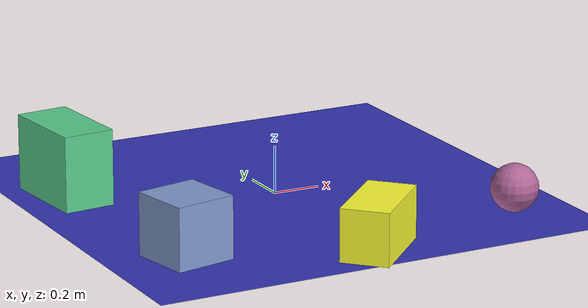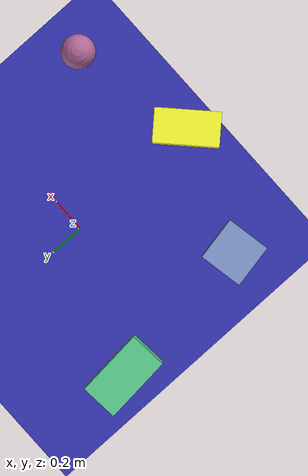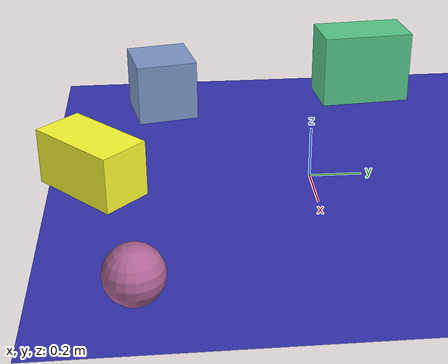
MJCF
<mujoco>
   <asset>
<texture type="skybox" builtin="gradient" rgb1="0.4 0.4 1.0" rgb2="1.0 0.3 0.5" width="500" height="500"/>
<texture name="flat_0" builtin="flat" rgb1="0.5 0.6 0.8" rgb2="0.5 0.6 0.8"  width="500" height="500"/>
<texture name="checker_1" builtin="checker" rgb1="0.9 0.6 0.9" rgb2="0.5 0.2 0.3" width="500" height="500"/>
<texture name="gradient_2" builtin="gradient" rgb1="0.1 0.8 0.8" rgb2="0.6 0.8 0.3" width="500" height="500"/>
<texture name="flat_3" builtin="flat" rgb1="1.0 1.0 0.2" rgb2="1.0 1.0 0.2"  width="500" height="500"/><material name="flat_0_mat" reflectance="0.4842770800506171" texture="flat_0" texuniform="true"/>
<material name="checker_1_mat" reflectance="0.35874438715824586" texrepeat="10 10" texture="checker_1" texuniform="false" />
<material name="gradient_2_mat" reflectance="0.3997366577722494" texture="gradient_2" texuniform="true"/>
<material name="flat_3_mat" reflectance="0.6703954456533228" texture="flat_3" texuniform="true"/>
   </asset>

   <worldbody>
     <geom type="plane" size="1 1 0.1" rgba="0.2 0.2 0.7 1" />
<light pos="-0.7636870178013433 0.3600252531273034 2" dir="0 0 -1" cutoff="90" diffuse="1 1 1" specular="1 1 1"/>
<light pos="0.6509544292556879 0.9768329638116879 2" dir="0 0 -1" cutoff="90" diffuse="1 1 1" specular="1 1 1"/>
<geom type="box" pos="-0.68 -0.56 0.13" size="0.13 0.13 0.13" material="flat_0_mat" euler="0 0 11" />
<geom type="sphere" pos="0.75 -0.66 0.1" size="0.1 0.1 0.1" material="checker_1_mat" euler="0 0 60" />
<geom type="box" pos="-0.78 0.36 0.16" size="0.11 0.2 0.16" material="gradient_2_mat" euler="0 0 5" />
<geom type="box" pos="0.02 -0.83 0.11" size="0.19 0.1 0.11" material="flat_3_mat" euler="0 0 44" /><camera euler="60 0 180" fovy="60" name="camera1" pos="-0.2 -1.5 1"></camera>   </worldbody>
   <visual>
      <headlight diffuse="0.7 0.7 0.7"/>
   </visual>
</mujoco>
